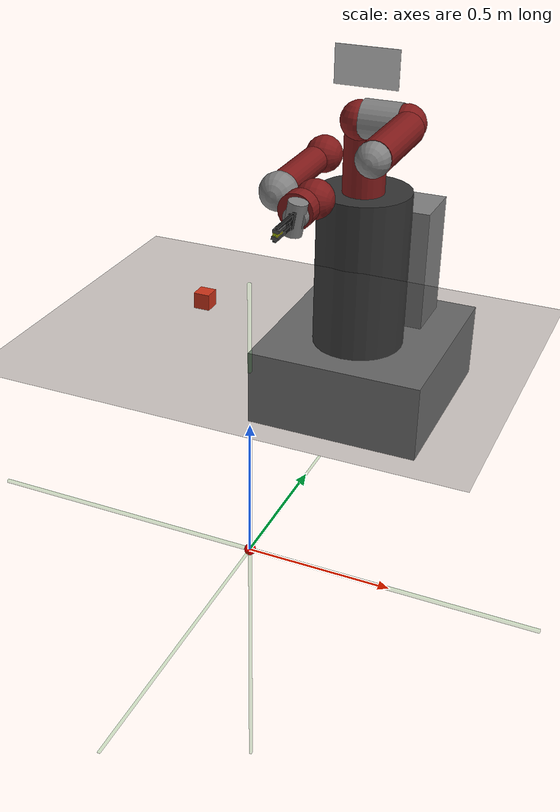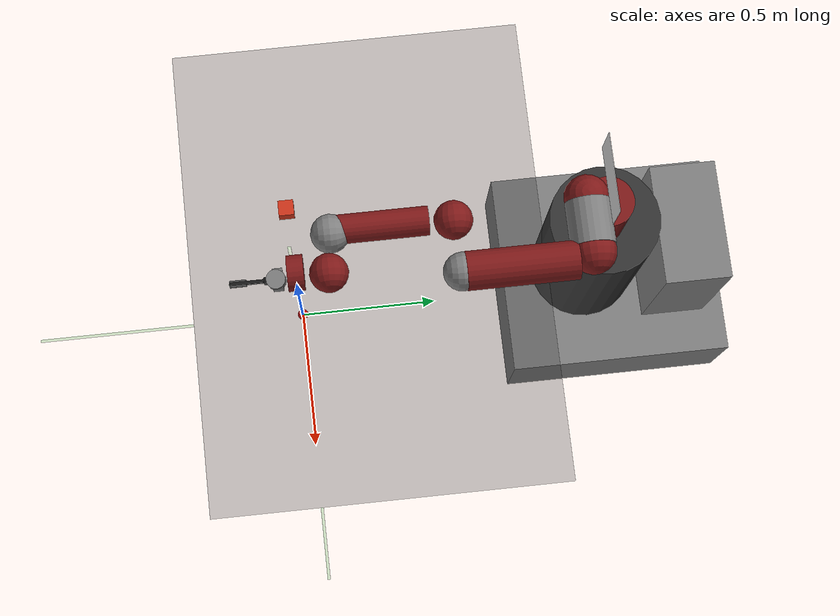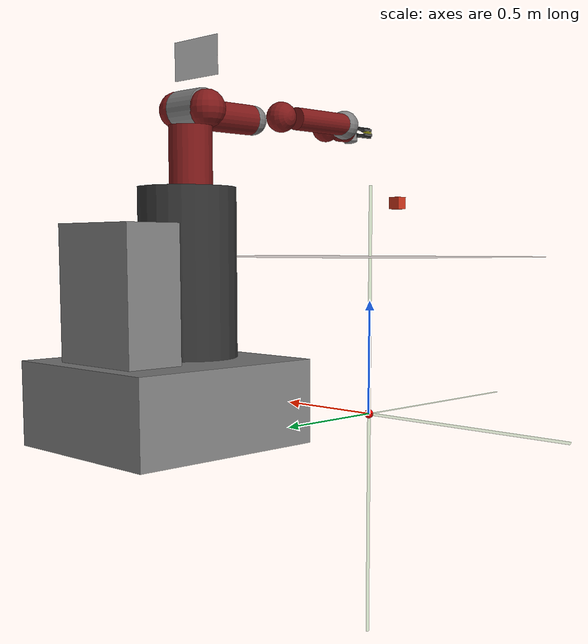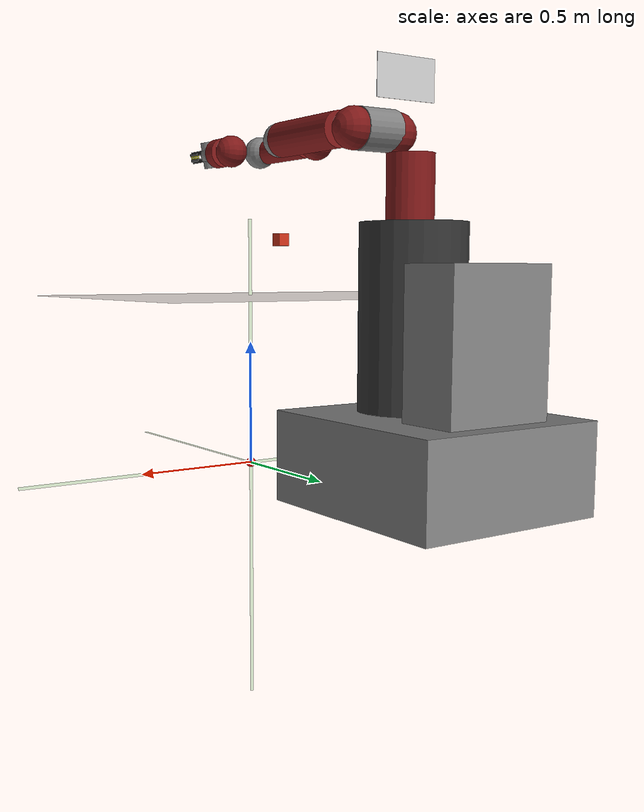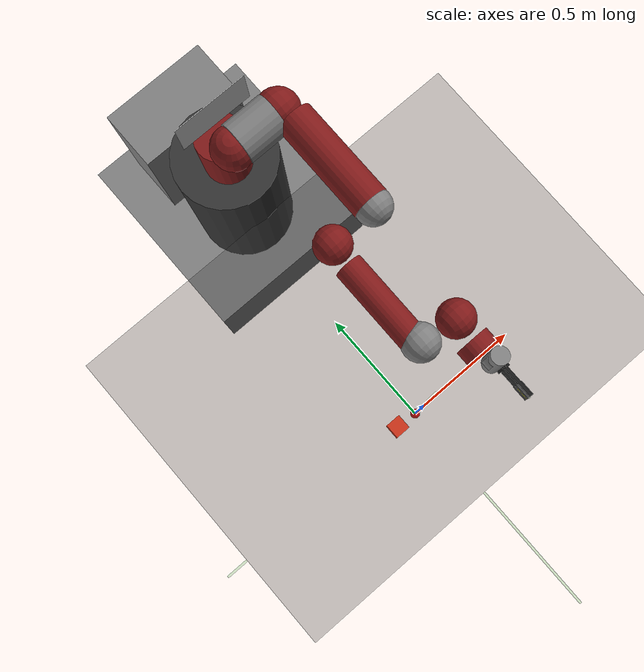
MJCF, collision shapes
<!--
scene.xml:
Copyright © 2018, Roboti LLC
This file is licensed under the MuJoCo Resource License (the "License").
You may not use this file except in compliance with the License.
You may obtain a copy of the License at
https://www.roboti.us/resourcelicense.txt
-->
<mujoco>
    <compiler angle="radian"/>
    <option timestep="0.002">
        <flag warmstart="enable"></flag>
    </option>

    <include file="./dfm_env/assets/scenes/scene.xml"/>
    <include file="./dfm_env/assets/robots/sawyer.xml"/>
    <worldbody>

        <body name="block" pos="-0.15 0 0.92">
			<joint name="j_block" type="free" damping="0.01"></joint>
			<geom size="0.025 0.025 0.025" type="box" name="object0" material="block_mat" mass="50"></geom>
		</body>

        <body name="target" pos="0. 0. 0.">
            <site name="target_site" pos="0 0 0" size="0.02 0.02 0.02" rgba="1 0 0 1" type="sphere"></site>
		</body>

    </worldbody>
    <equality>
        <!--http://www.mujoco.org/forum/index.php?threads/mocap-control-makes-fingers-off-the-gripper-base.3792/-->
        <weld body1="mocap_body" body2="arm_gripper_base" relpose="0 0 0 1 0 0 0" solimp="0.95 0.9 0.001"
              solref="0.02 1"></weld>
    </equality>

    <actuator>
    </actuator>

</mujoco>

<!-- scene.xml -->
<mujoco>

    <statistic extent="2" meansize=".05"/>

    <option timestep="0.005" solver="Newton" iterations="30" tolerance="1e-10" jacobian="sparse" cone="pyramidal"/>

    <visual>
        <rgba haze="0.15 0.25 0.35 1"/>
        <quality shadowsize="2048"/>
        <map stiffness="700" shadowscale="0.5" fogstart="10" fogend="15" zfar="40" haze="0.3"/>
    </visual>

    <asset>
        <texture type="skybox" builtin="gradient" rgb1="0.3 0.5 0.7" rgb2="0 0 0" width="512" height="512"/>
        <texture name="texplane" type="2d" builtin="checker" rgb1=".2 .3 .4" rgb2=".1 0.15 0.2"
            width="512" height="512" mark="cross" markrgb=".8 .8 .8"/>
        <texture name="texcarpet" type="2d" file="./dfm_env/assets/textures/carpet.png"/>
        <texture name="texsponge" type="2d" file="./dfm_env/assets/textures/sponge.png"/>
        <texture name="texmarble" type="cube" file="./dfm_env/assets/textures/marble.png"/>

        <material name="block_mat" specular="0" shininess="0.5" reflectance="0" rgba="0.8 0.2 0.1 1"></material>
        <material name="matplane" reflectance="0.3" texture="texplane" texrepeat="1 1" texuniform="true"/>
        <material name="matcarpet" texture="texcarpet"/>
        <material name="matsponge" texture="texsponge" specular="0.3"/>
        <material name="matmarble" texture="texmarble" rgba=".7 .7 .7 1"/>
        <material name='MatGnd' specular='.3' shininess='.3' reflectance='0.3' rgba='.2 .2 .2 1'/>
        <material name='mat_rope'  specular='.3' shininess='.3' reflectance='0.3'/>
    </asset>

    <worldbody>
        <light directional="true" diffuse=".4 .4 .4" specular="0.1 0.1 0.1" pos="0 0 5.0" dir="0 0 -1" castshadow="false"/>
        <light directional="true" diffuse=".6 .6 .6" specular="0.2 0.2 0.2" pos="0 0 4" dir="0 0 -1"  castshadow="false" />

        <geom name='tableTop' material='MatGnd' type='plane' pos='0 0.25 0.7' size='0.8 0.6 0.4' conaffinity="3" contype="3"/>

        <geom name="ground" type="plane" size="0 0 1" pos="0 0 0" quat="1 0 0 0" material="matplane" condim="1"/>

    </worldbody>
</mujoco>

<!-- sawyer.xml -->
<mujoco model='sawyer'>
	<compiler angle='radian' coordinate='local' meshdir='./dfm_env/meshes'/>
	<option collision='all' impratio='1' cone='elliptic' timestep='0.001' gravity='0 0 -9.8' viscosity='0' iterations='20' />
    <size njmax='3000' nconmax='2000' />

	<!--  ================= Visual Elements ================= /-->
    <asset>
		<mesh name='pedestal' file='sawyer_meshes/arm/pedestal.stl' />
        <mesh name='base' file='sawyer_meshes/arm/base.stl' />
        <mesh name='l0' file='sawyer_meshes/arm/l0.stl' />
        <mesh name='head' file='sawyer_meshes/arm/head.stl' />
        <mesh name='l1' file='sawyer_meshes/arm/l1.stl' />
        <mesh name='l2' file='sawyer_meshes/arm/l2.stl' />
        <mesh name='l3' file='sawyer_meshes/arm/l3.stl' />
        <mesh name='l4' file='sawyer_meshes/arm/l4.stl' />
        <mesh name='l5' file='sawyer_meshes/arm/l5.stl' />
        <mesh name='l6' file='sawyer_meshes/arm/l6.stl' />
		<mesh name='half_round_tip' file='sawyer_meshes/electric_gripper/fingers/half_round_tip.stl' />
		<mesh name='electric_gripper_base' file='sawyer_meshes/electric_gripper/electric_gripper_base.stl' />
        <mesh name='extended_narrow' file='sawyer_meshes/electric_gripper/fingers/extended_narrow.stl'/>
        <mesh name='paddle_tip' file='sawyer_meshes/electric_gripper/fingers/paddle_tip.stl'/>
    </asset>

	<!--  ================= Physical Properties ================= /-->
	<default>
		<geom solref='0.01 1' solimp='0.95 0.95 0.01' condim='4'/>

		<default class='arm'>
			<geom condim='1' friction='0 0 0' density='2700' contype='1' conaffinity='1' />
			<joint limited='true' damping='1' />
		</default>

		<default class='viz'>
			<geom contype='0' conaffinity='0' group='1' type='mesh'/>
		</default>

		<default class='gripper'>
			<geom solref='0.01 1' solimp='0.98 0.98 0.005' condim='4' density='2700' />
			<joint limited='true' damping='0.001' stiffness='0.1' springref='0' />
		</default>

		<default class='gripper_pads'>
			<geom friction='1 0.005 0.0001' solref='0.01 1' solimp='0.95 0.98 0.001' condim='4' density='100'/>
		</default>

		<default class='takktile_unit'>
			<geom friction='5 0.003 0.0001' solref='0.008 1' solimp='0.95 0.99 0.0001' condim='6' density='300' size='0.003 0.002 0.003'  type='box' rgba='0.9 0.9 0.1 1' />
			<site size='0.0035 0.001 0.0035' type='box' rgba='0.9 0.9 0.3 0.2' />
		</default>
	</default>

	<!--  ================= Kinematic Tree ================= /-->
    <worldbody>
        <light directional='true' cutoff='40' exponent='10' diffuse='.4 .4 .4' specular='.7 .7 .7' pos='0.9 0 1.5' dir='0 0 -1' castshadow="false"/>
        <camera name='static_camera' pos='0.0 -0.75 2.7' euler='0.5 0 0' />
		<!--================= Mocap =================-->
        <body name="mocap_body" pos="0 0 0" mocap="true">
            <geom conaffinity="0" contype="0" pos="0 0 0" rgba="0 0.5 0 0.7" size="0.005 0.005 0.005" type="box"></geom>
            <geom conaffinity="0" contype="0" pos="0 0 0" rgba="0 0.5 0 0.1" size="1 0.005 0.005" type="box"></geom>
            <geom conaffinity="0" contype="0" pos="0 0 0" rgba="0 0.5 0 0.1" size="0.005 1 0.001" type="box"></geom>
            <geom conaffinity="0" contype="0" pos="0 0 0" rgba="0 0.5 0 0.1" size="0.005 0.005 1" type="box"></geom>
        </body>

        <!--  ================= Base ================= /-->
        <body name='base' quat='0.5 0 0 -0.5' pos='0 1 0.93' childclass='arm'>
            <inertial pos='0 0 0' mass='0' diaginertia='0 0 0' />
            <body name='controller_box' pos='0 0 0'>
                <inertial pos='-0.325 0 -0.38' mass='46.64' diaginertia='1.71363 1.27988 0.809981' />
                <geom size='0.11 0.2 0.265' pos='-0.325 0 -0.38' type='box' />
            </body>
            <body name='pedestal_feet' pos='0 0 0'>
                <inertial pos='-0.1225 0 -0.758' mass='167.09' diaginertia='8.16095 9.59375 15.0785' />
                <geom size='0.385 0.35 0.155' pos='-0.1225 0 -0.758' type='box' />
            </body>
            <body name='torso' pos='0 0 0'>
                <inertial pos='0 0 0' mass='0.0001' diaginertia='1e-08 1e-08 1e-08' />
                <geom size='0.05 0.05 0.05' type='box' contype='0' conaffinity='0' group='1' rgba='0.2 0.2 0.2 1' />
            </body>
            <body name='pedestal' pos='0 0 0'>
                <inertial pos='0 0 0' quat='0.659267 -0.259505 -0.260945 0.655692' mass='60.864' diaginertia='6.0869 5.81635 4.20915' />
                <geom pos='0.26 0.345 -0.91488' quat='0.5 0.5 -0.5 -0.5' type='mesh' contype='0' conaffinity='0' group='1' rgba='0.2 0.2 0.2 1' mesh='pedestal' />
                <geom size='0.18 0.31' pos='-0.02 0 -0.29' type='cylinder' rgba='0.2 0.2 0.2 1' />
            </body>
            <body name='arm_arm_base_link' pos='0 0 0'>
                <inertial pos='-0.0006241 -2.8025e-05 0.065404' quat='-0.209285 0.674441 0.227335 0.670558' mass='2.0687' diaginertia='0.00740351 0.00681776 0.00672942' />
                <geom type='mesh' contype='0' conaffinity='0' group='1' rgba='0.5 0.1 0.1 1' mesh='base' />
                <geom size='0.08 0.12' pos='0 0 0.12' type='cylinder' rgba='0.5 0.1 0.1 1' />
				<!--  ================= Arm ================= /-->
                <body name='arm_l0' pos='0 0 0.08' quat='1 0 0 0'>
                    <inertial pos='0.024366 0.010969 0.14363' quat='0.894823 0.00899958 -0.170275 0.412573' mass='5.3213' diaginertia='0.0651588 0.0510944 0.0186218' />
                    <joint name='arm_j0' pos='0 0 0' axis='0 0 1' range='-3.0503 3.0503' />
                    <geom type='mesh' contype='0' conaffinity='0' group='1' rgba='0.5 0.1 0.1 1' mesh='l0' />
                    <geom size='0.07' pos='0.08 0 0.23' rgba='0.5 0.1 0.1 1' />

					<!--===Head===-->
					<body name='head' pos='0 0 0.2965'>
                        <inertial pos='0.0053207 -2.6549e-05 0.1021' quat='0.999993 7.08405e-05 -0.00359857 -0.000626247' mass='1.5795' diaginertia='0.0118334 0.00827089 0.00496574' />
                        <geom type='mesh' contype='0' conaffinity='0' group='1' rgba='0.5 0.1 0.1 1' mesh='head' />
						<!--geom size='0.18' pos='0 0 0.08' rgba='0.5 0.1 0.1 1' /-->
                        <body name='screen' pos='0.03 0 0.105' quat='0.5 0.5 0.5 0.5'>
                            <inertial pos='0 0 0' mass='0.0001' diaginertia='1e-08 1e-08 1e-08' />
                            <geom size='0.12 0.07 0.001' type='box' contype='0' conaffinity='0' group='1' rgba='0.8 0.8 0.8 0.9' />
                            <geom size='0.001' rgba='0.2 0.2 0.2 1' />
                        </body>
                        <body name='head_camera' pos='0.0228027 0 0.816572' quat='0.342813 -0.618449 0.618449 -0.342813'>
                            <inertial pos='0.0228027 0 0.216572' quat='0.342813 -0.618449 0.618449 -0.342813' mass='0' diaginertia='0 0 0' />
                        </body>
                    </body>
					<!--===/Head===-->

                    <body name='arm_torso_itb' pos='-0.055 0 0.22' quat='0.707107 0 -0.707107 0'>
                        <inertial pos='0 0 0' mass='0.0001' diaginertia='1e-08 1e-08 1e-08' />
                    </body>
					<body name='arm_l1' pos='0.081 0.05 0.237' quat='0.5 -0.5 0.5 0.5'>
                        <inertial pos='-0.0030849 -0.026811 0.092521' quat='0.424888 0.891987 0.132364 -0.0794296' mass='4.505' diaginertia='0.0224339 0.0221624 0.0097097' />
                        <joint name='arm_j1' pos='0 0 0' axis='0 0 1' range='-3.8095 2.2736' />
                        <geom type='mesh' contype='0' conaffinity='0' group='1' rgba='0.5 0.1 0.1 1' mesh='l1' />
                        <geom size='0.07' pos='0 0 0.1225' rgba='0.5 0.1 0.1 1' />
                        <body name='arm_l1_2' pos='0 0 0'>
                            <inertial pos='1e-08 1e-08 1e-08' quat='0.820473 0.339851 -0.17592 0.424708' mass='1e-08' diaginertia='1e-08 1e-08 1e-08' />
                            <geom size='0.07 0.07' pos='0 0 0.035' type='cylinder' />
                        </body>
                        <body name='arm_l2' pos='0 -0.14 0.1425' quat='0.707107 0.707107 0 0'>
                            <inertial pos='-0.00016044 -0.014967 0.13582' quat='0.707831 -0.0524761 0.0516007 0.702537' mass='1.745' diaginertia='0.0257928 0.025506 0.00292515' />
                            <joint name='arm_j2' pos='0 0 0' axis='0 0 1' range='-3.0426 3.0426' />
                            <geom type='mesh' contype='0' conaffinity='0' group='1' rgba='0.5 0.1 0.1 1' mesh='l2' />
                            <geom size='0.06 0.17' pos='0 0 0.08' type='cylinder' rgba='0.5 0.1 0.1 1' />
                            <body name='arm_l2_2' pos='0 0 0'>
                                <inertial pos='1e-08 1e-08 1e-08' quat='0.820473 0.339851 -0.17592 0.424708' mass='1e-08' diaginertia='1e-08 1e-08 1e-08' />
                                <geom size='0.06' pos='0 0 0.26' />
                            </body>
                            <body name='arm_l3' pos='0 -0.042 0.26' quat='0.707107 -0.707107 0 0'>
                                <inertial pos='-0.0048135 -0.0281 -0.084154' quat='0.902999 0.385391 -0.0880901 0.168247' mass='2.5097' diaginertia='0.0102404 0.0096997 0.00369622' />
                                <joint name='arm_j3' pos='0 0 0' axis='0 0 1' range='-3.0439 3.0439' />
                                <geom type='mesh' contype='0' conaffinity='0' group='1' rgba='0.5 0.1 0.1 1' mesh='l3' />
                                <geom size='0.06' pos='0 -0.01 -0.12' rgba='0.5 0.1 0.1 1' />
                                <body name='arm_l4' pos='0 -0.125 -0.1265' quat='0.707107 0.707107 0 0'>
                                    <inertial pos='-0.0018844 0.0069001 0.1341' quat='0.803612 0.031257 -0.0298334 0.593582' mass='1.1136' diaginertia='0.0136549 0.0135493 0.00127353' />
                                    <joint name='arm_j4' pos='0 0 0' axis='0 0 1' range='-2.9761 2.9761' />
                                    <geom type='mesh' contype='0' conaffinity='0' group='1' rgba='0.5 0.1 0.1 1' mesh='l4' />
                                    <geom size='0.045 0.15' pos='0 0 0.11' type='cylinder' rgba='0.5 0.1 0.1 1' />
                                    <body name='arm_arm_itb' pos='-0.055 0 0.075' quat='0.707107 0 -0.707107 0'>
                                        <inertial pos='0 0 0' mass='0.0001' diaginertia='1e-08 1e-08 1e-08' />
                                    </body>
                                    <body name='arm_l4_2' pos='0 0 0'>
                                        <inertial pos='1e-08 1e-08 1e-08' quat='0.820473 0.339851 -0.17592 0.424708' mass='1e-08' diaginertia='1e-08 1e-08 1e-08' />
                                        <geom size='0.06' pos='0 0.01 0.26' />
                                    </body>
                                    <body name='arm_l5' pos='0 0.031 0.275' quat='0.707107 -0.707107 0 0'>
                                        <inertial pos='0.0061133 -0.023697 0.076416' quat='0.404076 0.9135 0.0473125 0.00158335' mass='1.5625' diaginertia='0.00474131 0.00422857 0.00190672' />
										<joint name='arm_j5' pos='0 0 0' axis='0 0 1' range='-2.9761 2.9761' />
                                        <geom type='mesh' contype='0' conaffinity='0' group='1' rgba='0.5 0.1 0.1 1' mesh='l5' />
                                        <geom size='0.06' pos='0 0 0.1' rgba='0.5 0.1 0.1 1' />
                                        <body name='arm_hand_camera' pos='0.039552 -0.033 0.0695' quat='0.707107 0 0.707107 0'>
                                            <inertial pos='0.039552 -0.033 0.0695' quat='0.707107 0 0.707107 0' mass='0' diaginertia='0 0 0' />
                                        </body>
                                        <body name='arm_wrist' pos='0 0 0.10541' quat='0.707107 0.707107 0 0'>
                                            <inertial pos='0 0 0.10541' quat='0.707107 0.707107 0 0' mass='0' diaginertia='0 0 0' />
                                        </body>
                                        <body name='arm_l6' pos='0 -0.11 0.1053' quat='0.0616248 0.06163 -0.704416 0.704416'>
                                            <inertial pos='-8.0726e-06 0.0085838 -0.0049566' quat='0.479044 0.515636 -0.513069 0.491322' mass='0.3292' diaginertia='0.000360258 0.000311068 0.000214974' />
                                            <joint name='arm_j6' pos='0 0 0' axis='0 0 1' range='-4.7124 4.7124' />
											<body name='gripper_origin' pos='0 0 0.18735' quat='0.707107 0 0 0.707107'>
											<site name='gripper_origin' size='0.005' pos='0 0 0' rgba='0 0.5 0 0.25' quat='1 0 0 0'/>
											</body>
                                            <geom type='mesh' contype='0' conaffinity='0' group='1' rgba='0.5 0.1 0.1 1' mesh='l6' />
                                            <geom size='0.055 0.025' pos='0 0.015 -0.01' type='cylinder' rgba='0.5 0.1 0.1 1' />
                                            <body name='arm_hand' pos='0 0 0.0245' quat='0.707107 0 0 0.707107'>
                                                <inertial pos='1e-08 1e-08 1e-08' quat='0.820473 0.339851 -0.17592 0.424708' mass='1e-08' diaginertia='1e-08 1e-08 1e-08' />
                                                <geom size='0.035 0.015' pos='0 0 0.02' type='cylinder' />
												<!--  ================= Gripper ================= /-->
                                                <body name='arm_gripper_base' pos='0 0 0.025'>
                                                    <inertial pos='0 0 0' quat='-0.5 0.5 0.5 0.5' mass='0.3' diaginertia='3e-08 2e-08 2e-08' />
                                                    <geom quat='0 0 0.707107 0.707107' class='viz' mesh='electric_gripper_base' />
                                                    <geom size='0.029 0.05' quat='0 0 0.707107 0.707107' type='cylinder' />
                                                    <body name='finger_l' pos='0 -0.0015 0.02'>
                                                        <inertial pos='0 0 0' quat='0 0 0 -1' mass='0.02' diaginertia='0.01 0.01 0.01' />
                                                        <joint name='gripper_jl' pos='0 0 0' axis='0 1 0' type='slide' range='0 0.020833' springdamper='0.08 6' limited='true'/>
                                                        <geom class='viz' mesh='extended_narrow' euler='1.57 1.57 0' rgba='0.1 0.1 0.1 1'/>
                                                        <geom size='0.005 0.00675 0.05635' pos='0 0.01725 0.0615' quat='0 0 0 -1' type='box' rgba='0.1 0.1 0.1 1'/>
                                                        <geom size='0.005 0.025 0.0085' pos='-0.005 -0.003 0.0083' quat='0 0 0 -1' type='box' rgba='0.1 0.1 0.1 1'/>
														<geom size='0.01 0.005 0.025' pos='0 0.012 0.095' type='box' rgba='0.3 0.3 0.3 0.9' class='gripper_pads' />
														<!--  === Sensors === /-->
														<body name='sensor_array_l' pos='0 0.007 0.1' quat='0 0 0 1' childclass='takktile_unit'>
															<geom pos='0.0045 0.002 -0.016'/>
															<site name='sensor_tl0' pos='0.0045 0.004 -0.016'/>
															<geom pos='-0.0045 0.002 -0.016' />
															<site name='sensor_tl1' pos='-0.0045 0.004 -0.016'/>
															<geom pos='0.0045 0.002 -0.008'/>
															<site name='sensor_tl2' pos='0.0045 0.004 -0.008'/>
															<geom pos='-0.0045 0.002 -0.008'/>
															<site name='sensor_tl3' pos='-0.0045 0.004 -0.008'/>
															<geom pos='0.0045 0.002 0'/>
															<site name='sensor_tl4' pos='0.0045 0.004 0'/>
															<geom pos='-0.0045 0.002 0'/>
															<site name='sensor_tl5' pos='-0.0045 0.004 0'/>
															<geom pos='0.0045 0.002 0.008'/>
															<site name='sensor_tl6' pos='0.0045 0.004 0.008'/>
															<geom pos='-0.0045 0.002 0.008'/>
															<site name='sensor_tl7' pos='-0.0045 0.004 0.008'/>
															<geom pos='0.0045 0.002 0.016'/>
															<site name='sensor_tl8' pos='0.0045 0.004 0.016'/>
															<geom pos='-0.0045 0.002 0.016'/>
															<site name='sensor_tl9' pos='-0.0045 0.004 0.016'/>
														</body>
                                                    </body>
                                                    <body name='finger_r' pos='0 0.0015 0.02'>
                                                        <inertial pos='0 0 0' mass='0.02' diaginertia='0.01 0.01 0.01' />
                                                        <joint name='gripper_jr' pos='0 0 0' axis='0 1 0' type='slide' range='-0.020833 0' springdamper='0.08 6' limited='true'/>
                                                        <geom class='viz' mesh='extended_narrow' euler='1.57 -1.57 0' rgba='0.1 0.1 0.1 1'/>
                                                        <geom size='0.005 0.00675 0.05635' pos='0 -0.01725 0.0615' type='box' rgba='0.1 0.1 0.1 1'/>
                                                        <geom size='0.005 0.025 0.0085' pos='0.005 0.003 0.0083' type='box' rgba='0.1 0.1 0.1 1'/>
														<geom size='0.01 0.005 0.025' pos='0 -0.012 0.095' type='box' rgba='0.3 0.3 0.3 0.9' class='gripper_pads' />
														<!--  === Sensors === /-->
														<body name='sensor_array_r' pos='0 -0.007 0.1' quat='1 0 0 0' childclass='takktile_unit'>
															<geom pos='0.0045 0.002 -0.016'/>
															<site name='sensor_tr0' pos='0.0045 0.004 -0.016'/>
															<geom pos='-0.0045 0.002 -0.016' />
															<site name='sensor_tr1' pos='-0.0045 0.004 -0.016'/>
															<geom pos='0.0045 0.002 -0.008'/>
															<site name='sensor_tr2' pos='0.0045 0.004 -0.008'/>
															<geom pos='-0.0045 0.002 -0.008'/>
															<site name='sensor_tr3' pos='-0.0045 0.004 -0.008'/>
															<geom pos='0.0045 0.002 0'/>
															<site name='sensor_tr4' pos='0.0045 0.004 0'/>
															<geom pos='-0.0045 0.002 0'/>
															<site name='sensor_tr5' pos='-0.0045 0.004 0'/>
															<geom pos='0.0045 0.002 0.008'/>
															<site name='sensor_tr6' pos='0.0045 0.004 0.008'/>
															<geom pos='-0.0045 0.002 0.008'/>
															<site name='sensor_tr7' pos='-0.0045 0.004 0.008'/>
															<geom pos='0.0045 0.002 0.016'/>
															<site name='sensor_tr8' pos='0.0045 0.004 0.016'/>
															<geom pos='-0.0045 0.002 0.016'/>
															<site name='sensor_tr9' pos='-0.0045 0.004 0.016'/>
														</body>
                                                    </body>
                                                </body>
                                            </body>
                                        </body>
                                    </body>
                                </body>
                            </body>
                        </body>
                    </body>
                </body>
            </body>
        </body>
    </worldbody>

	<!--  ================= Constraints ================= /-->
	<equality>
		<joint joint1='gripper_jl' joint2='gripper_jr' polycoef='0 -1 0 0 0' solimp="0.9 0.95 0.001" solref="0.02 1"/>
	</equality>

	<!--  ================= Actuators ================= /-->
	<actuator>
		<!--  ================= Torque actuators ================= /-->
		<motor joint='arm_j0' name='tj0' ctrllimited='false'/>
		<motor joint='arm_j1' name='tj1' ctrllimited='false'/>
		<motor joint='arm_j2' name='tj2' ctrllimited='false'/>
		<motor joint='arm_j3' name='tj3' ctrllimited='false'/>
		<motor joint='arm_j4' name='tj4' ctrllimited='false'/>
		<motor joint='arm_j5' name='tj5' ctrllimited='false'/>
		<motor joint='arm_j6' name='tj6' ctrllimited='false'/>
		<motor joint='gripper_jl' name='tg0' ctrllimited='false'/>

		<!--  ================= Position actuators ================= /-->
	</actuator>

	<!--  ================= Sensors ================= /-->
	<sensor>
        <jointpos name='j0' joint='arm_j0' />
        <jointpos name='j1' joint='arm_j1' />
        <jointpos name='j2' joint='arm_j2' />
        <jointpos name='j3' joint='arm_j3' />
        <jointpos name='j4' joint='arm_j4' />
        <jointpos name='j5' joint='arm_j5' />
        <jointpos name='j6' joint='arm_j6' />
        <jointpos name='gripper' joint='gripper_jl' />

		<touch name='tl0' site='sensor_tl0' />
		<touch name='tl1' site='sensor_tl1' />
		<touch name='tl2' site='sensor_tl2' />
		<touch name='tl3' site='sensor_tl3' />
		<touch name='tl4' site='sensor_tl4' />
		<touch name='tl5' site='sensor_tl5' />
		<touch name='tl6' site='sensor_tl6' />
		<touch name='tl7' site='sensor_tl7' />
		<touch name='tl8' site='sensor_tl8' />
		<touch name='tl9' site='sensor_tl9' />
		<touch name='tr0' site='sensor_tr0' />
		<touch name='tr1' site='sensor_tr1' />
		<touch name='tr2' site='sensor_tr2' />
		<touch name='tr3' site='sensor_tr3' />
		<touch name='tr4' site='sensor_tr4' />
		<touch name='tr5' site='sensor_tr5' />
		<touch name='tr6' site='sensor_tr6' />
		<touch name='tr7' site='sensor_tr7' />
		<touch name='tr8' site='sensor_tr8' />
		<touch name='tr9' site='sensor_tr9' />
	</sensor>
</mujoco>
